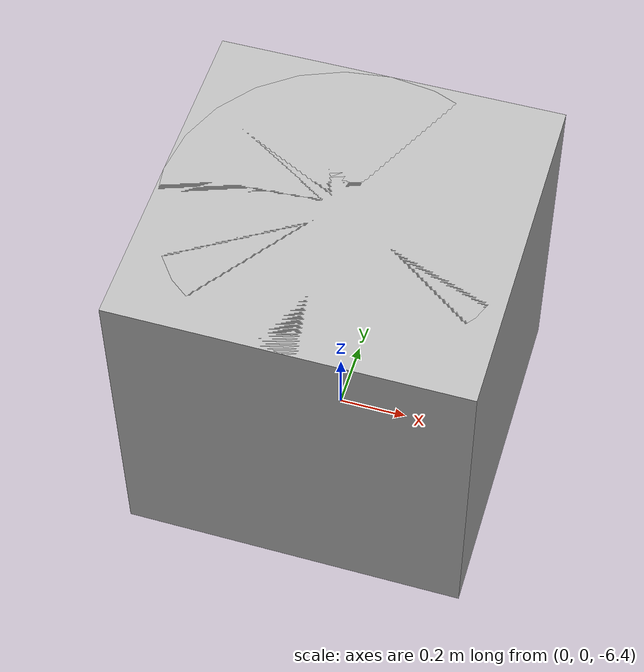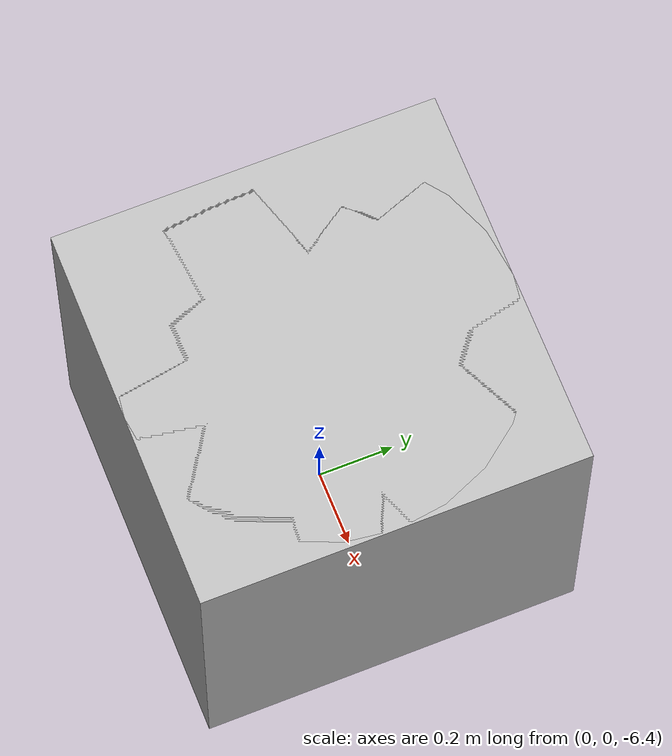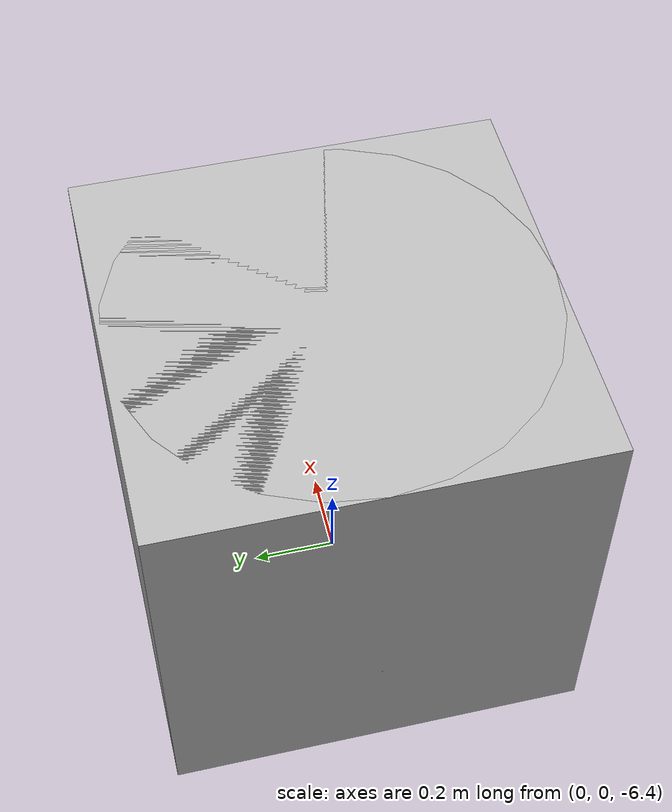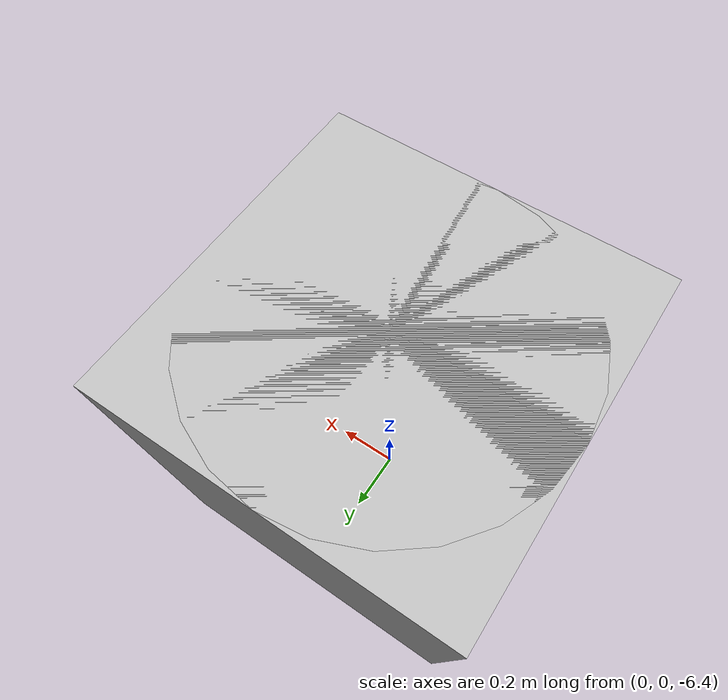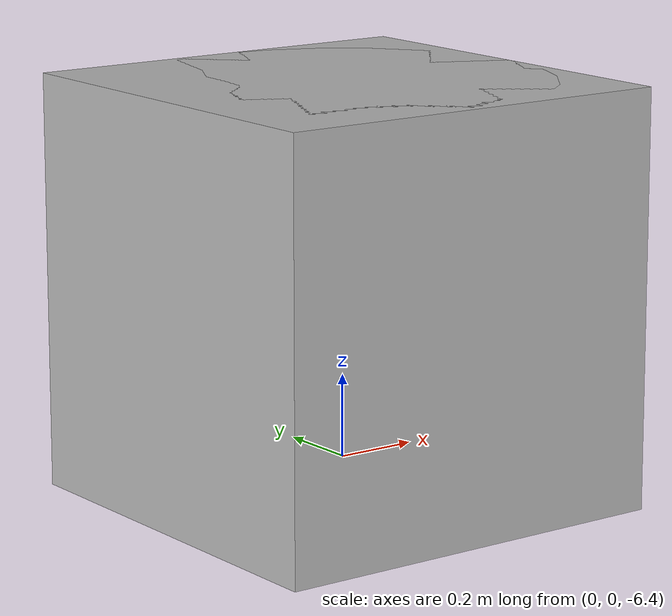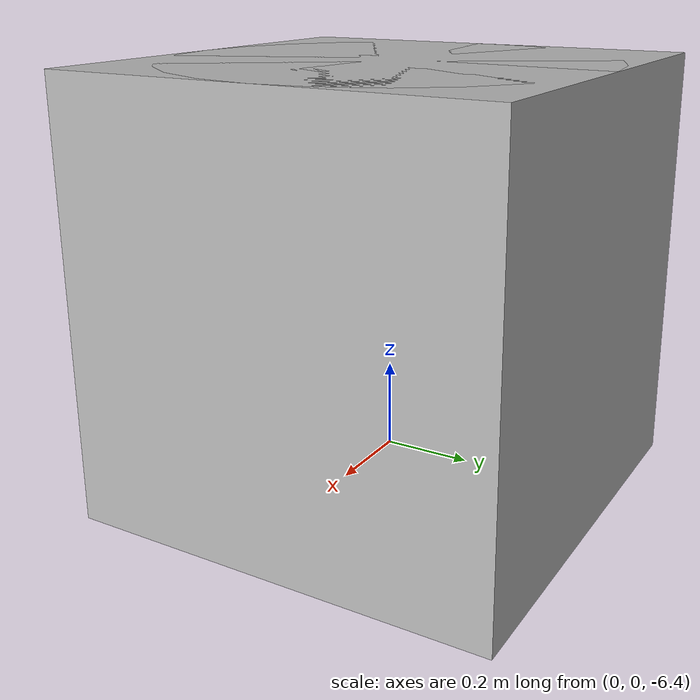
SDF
<?xml version="1.0"?>
<sdf version="1.6">
<world name="default">

    <plugin name="object_spawner" filename="libWorldUtils.so"/>

    <model name="sphere_1">
        <pose>0 0 -3 0 0 0</pose>
        <link name="link">
          <collision name="collision">
            <geometry>
              <sphere>
                <radius>0.5</radius>
              </sphere>
            </geometry>
          </collision>
          <visual name="visual">
            <pose>0 0 -3 0 0 0</pose>
            <geometry>
              <sphere>
                <radius>0.5</radius>
              </sphere>
            </geometry>
            <plugin name="visual_utils" filename="libVisualUtils.so">
              <uid>sphere_1</uid>
              <patterns>
                Plugin/flat_
                Plugin/gradient_
                Plugin/chess_
                Plugin/perlin_
              </patterns>
              <variants>100</variants>
            </plugin>
          </visual>
        </link>
    </model>
    <model name="sphere_2">
        <pose>0 0 -3 0 0 0</pose>
        <link name="link">
          <collision name="collision">
            <geometry>
              <sphere>
                <radius>0.5</radius>
              </sphere>
            </geometry>
          </collision>
          <visual name="visual">
            <pose>0 0 -3 0 0 0</pose>
            <geometry>
              <sphere>
                <radius>0.5</radius>
              </sphere>
            </geometry>
            <plugin name="visual_utils" filename="libVisualUtils.so">
              <uid>sphere_2</uid>
              <patterns>
                Plugin/flat_
                Plugin/gradient_
                Plugin/chess_
                Plugin/perlin_
              </patterns>
              <variants>100</variants>
            </plugin>
          </visual>
        </link>
    </model>
    <model name="sphere_3">
        <pose>0 0 -3 0 0 0</pose>
        <link name="link">
          <collision name="collision">
            <geometry>
              <sphere>
                <radius>0.5</radius>
              </sphere>
            </geometry>
          </collision>
          <visual name="visual">
            <pose>0 0 -3 0 0 0</pose>
            <geometry>
              <sphere>
                <radius>0.5</radius>
              </sphere>
            </geometry>
            <plugin name="visual_utils" filename="libVisualUtils.so">
              <uid>sphere_3</uid>
              <patterns>
                Plugin/flat_
                Plugin/gradient_
                Plugin/chess_
                Plugin/perlin_
              </patterns>
              <variants>100</variants>
            </plugin>
          </visual>
        </link>
    </model>
    <model name="sphere_4">
        <pose>0 0 -3 0 0 0</pose>
        <link name="link">
          <collision name="collision">
            <geometry>
              <sphere>
                <radius>0.5</radius>
              </sphere>
            </geometry>
          </collision>
          <visual name="visual">
            <pose>0 0 -3 0 0 0</pose>
            <geometry>
              <sphere>
                <radius>0.5</radius>
              </sphere>
            </geometry>
            <plugin name="visual_utils" filename="libVisualUtils.so">
              <uid>sphere_4</uid>
              <patterns>
                Plugin/flat_
                Plugin/gradient_
                Plugin/chess_
                Plugin/perlin_
              </patterns>
              <variants>100</variants>
            </plugin>
          </visual>
        </link>
    </model>
    <model name="sphere_5">
        <pose>0 0 -3 0 0 0</pose>
        <link name="link">
          <collision name="collision">
            <geometry>
              <sphere>
                <radius>0.5</radius>
              </sphere>
            </geometry>
          </collision>
          <visual name="visual">
            <pose>0 0 -3 0 0 0</pose>
            <geometry>
              <sphere>
                <radius>0.5</radius>
              </sphere>
            </geometry>
            <plugin name="visual_utils" filename="libVisualUtils.so">
              <uid>sphere_5</uid>
              <patterns>
                Plugin/flat_
                Plugin/gradient_
                Plugin/chess_
                Plugin/perlin_
              </patterns>
              <variants>100</variants>
            </plugin>
          </visual>
        </link>
    </model>
    <model name="sphere_6">
        <pose>0 0 -3 0 0 0</pose>
        <link name="link">
          <collision name="collision">
            <geometry>
              <sphere>
                <radius>0.5</radius>
              </sphere>
            </geometry>
          </collision>
          <visual name="visual">
            <pose>0 0 -3 0 0 0</pose>
            <geometry>
              <sphere>
                <radius>0.5</radius>
              </sphere>
            </geometry>
            <plugin name="visual_utils" filename="libVisualUtils.so">
              <uid>sphere_6</uid>
              <patterns>
                Plugin/flat_
                Plugin/gradient_
                Plugin/chess_
                Plugin/perlin_
              </patterns>
              <variants>100</variants>
            </plugin>
          </visual>
        </link>
    </model>
    <model name="sphere_7">
        <pose>0 0 -3 0 0 0</pose>
        <link name="link">
          <collision name="collision">
            <geometry>
              <sphere>
                <radius>0.5</radius>
              </sphere>
            </geometry>
          </collision>
          <visual name="visual">
            <pose>0 0 -3 0 0 0</pose>
            <geometry>
              <sphere>
                <radius>0.5</radius>
              </sphere>
            </geometry>
            <plugin name="visual_utils" filename="libVisualUtils.so">
              <uid>sphere_7</uid>
              <patterns>
                Plugin/flat_
                Plugin/gradient_
                Plugin/chess_
                Plugin/perlin_
              </patterns>
              <variants>100</variants>
            </plugin>
          </visual>
        </link>
    </model>
    <model name="sphere_8">
        <pose>0 0 -3 0 0 0</pose>
        <link name="link">
          <collision name="collision">
            <geometry>
              <sphere>
                <radius>0.5</radius>
              </sphere>
            </geometry>
          </collision>
          <visual name="visual">
            <pose>0 0 -3 0 0 0</pose>
            <geometry>
              <sphere>
                <radius>0.5</radius>
              </sphere>
            </geometry>
            <plugin name="visual_utils" filename="libVisualUtils.so">
              <uid>sphere_8</uid>
              <patterns>
                Plugin/flat_
                Plugin/gradient_
                Plugin/chess_
                Plugin/perlin_
              </patterns>
              <variants>100</variants>
            </plugin>
          </visual>
        </link>
    </model>
    <model name="sphere_9">
        <pose>0 0 -3 0 0 0</pose>
        <link name="link">
          <collision name="collision">
            <geometry>
              <sphere>
                <radius>0.5</radius>
              </sphere>
            </geometry>
          </collision>
          <visual name="visual">
            <pose>0 0 -3 0 0 0</pose>
            <geometry>
              <sphere>
                <radius>0.5</radius>
              </sphere>
            </geometry>
            <plugin name="visual_utils" filename="libVisualUtils.so">
              <uid>sphere_9</uid>
              <patterns>
                Plugin/flat_
                Plugin/gradient_
                Plugin/chess_
                Plugin/perlin_
              </patterns>
              <variants>100</variants>
            </plugin>
          </visual>
        </link>
    </model>
    <model name="sphere_10">
        <pose>0 0 -3 0 0 0</pose>
        <link name="link">
          <collision name="collision">
            <geometry>
              <sphere>
                <radius>0.5</radius>
              </sphere>
            </geometry>
          </collision>
          <visual name="visual">
            <pose>0 0 -3 0 0 0</pose>
            <geometry>
              <sphere>
                <radius>0.5</radius>
              </sphere>
            </geometry>
            <plugin name="visual_utils" filename="libVisualUtils.so">
              <uid>sphere_10</uid>
              <patterns>
                Plugin/flat_
                Plugin/gradient_
                Plugin/chess_
                Plugin/perlin_
              </patterns>
              <variants>100</variants>
            </plugin>
          </visual>
        </link>
    </model>

    <model name="box_1">
        <pose>0 0 -3 0 0 0</pose>
        <link name="link">
          <collision name="collision">
            <geometry>
              <box>
                <size>1 1 1</size>
              </box>
            </geometry>
          </collision>
          <visual name="visual">
            <pose>0 0 -3 0 0 0</pose>
            <geometry>
              <box>
                <size>1 1 1</size>
              </box>
            </geometry>
            <plugin name="visual_utils" filename="libVisualUtils.so">
              <uid>box_1</uid>
              <patterns>
                Plugin/flat_
                Plugin/gradient_
                Plugin/chess_
                Plugin/perlin_
              </patterns>
              <variants>100</variants>
            </plugin>
          </visual>
        </link>
    </model>
    <model name="box_2">
        <pose>0 0 -3 0 0 0</pose>
        <link name="link">
          <collision name="collision">
            <geometry>
              <box>
                <size>1 1 1</size>
              </box>
            </geometry>
          </collision>
          <visual name="visual">
            <pose>0 0 -3 0 0 0</pose>
            <geometry>
              <box>
                <size>1 1 1</size>
              </box>
            </geometry>
            <plugin name="visual_utils" filename="libVisualUtils.so">
              <uid>box_2</uid>
              <patterns>
                Plugin/flat_
                Plugin/gradient_
                Plugin/chess_
                Plugin/perlin_
              </patterns>
              <variants>100</variants>
            </plugin>
          </visual>
        </link>
    </model>
    <model name="box_3">
        <pose>0 0 -3 0 0 0</pose>
        <link name="link">
          <collision name="collision">
            <geometry>
              <box>
                <size>1 1 1</size>
              </box>
            </geometry>
          </collision>
          <visual name="visual">
            <pose>0 0 -3 0 0 0</pose>
            <geometry>
              <box>
                <size>1 1 1</size>
              </box>
            </geometry>
            <plugin name="visual_utils" filename="libVisualUtils.so">
              <uid>box_3</uid>
              <patterns>
                Plugin/flat_
                Plugin/gradient_
                Plugin/chess_
                Plugin/perlin_
              </patterns>
              <variants>100</variants>
            </plugin>
          </visual>
        </link>
    </model>
    <model name="box_4">
        <pose>0 0 -3 0 0 0</pose>
        <link name="link">
          <collision name="collision">
            <geometry>
              <box>
                <size>1 1 1</size>
              </box>
            </geometry>
          </collision>
          <visual name="visual">
            <pose>0 0 -3 0 0 0</pose>
            <geometry>
              <box>
                <size>1 1 1</size>
              </box>
            </geometry>
            <plugin name="visual_utils" filename="libVisualUtils.so">
              <uid>box_4</uid>
              <patterns>
                Plugin/flat_
                Plugin/gradient_
                Plugin/chess_
                Plugin/perlin_
              </patterns>
              <variants>100</variants>
            </plugin>
          </visual>
        </link>
    </model>
    <model name="box_5">
        <pose>0 0 -3 0 0 0</pose>
        <link name="link">
          <collision name="collision">
            <geometry>
              <box>
                <size>1 1 1</size>
              </box>
            </geometry>
          </collision>
          <visual name="visual">
            <pose>0 0 -3 0 0 0</pose>
            <geometry>
              <box>
                <size>1 1 1</size>
              </box>
            </geometry>
            <plugin name="visual_utils" filename="libVisualUtils.so">
              <uid>box_5</uid>
              <patterns>
                Plugin/flat_
                Plugin/gradient_
                Plugin/chess_
                Plugin/perlin_
              </patterns>
              <variants>100</variants>
            </plugin>
          </visual>
        </link>
    </model>
    <model name="box_6">
        <pose>0 0 -3 0 0 0</pose>
        <link name="link">
          <collision name="collision">
            <geometry>
              <box>
                <size>1 1 1</size>
              </box>
            </geometry>
          </collision>
          <visual name="visual">
            <pose>0 0 -3 0 0 0</pose>
            <geometry>
              <box>
                <size>1 1 1</size>
              </box>
            </geometry>
            <plugin name="visual_utils" filename="libVisualUtils.so">
              <uid>box_6</uid>
              <patterns>
                Plugin/flat_
                Plugin/gradient_
                Plugin/chess_
                Plugin/perlin_
              </patterns>
              <variants>100</variants>
            </plugin>
          </visual>
        </link>
    </model>
    <model name="box_7">
        <pose>0 0 -3 0 0 0</pose>
        <link name="link">
          <collision name="collision">
            <geometry>
              <box>
                <size>1 1 1</size>
              </box>
            </geometry>
          </collision>
          <visual name="visual">
            <pose>0 0 -3 0 0 0</pose>
            <geometry>
              <box>
                <size>1 1 1</size>
              </box>
            </geometry>
            <plugin name="visual_utils" filename="libVisualUtils.so">
              <uid>box_7</uid>
              <patterns>
                Plugin/flat_
                Plugin/gradient_
                Plugin/chess_
                Plugin/perlin_
              </patterns>
              <variants>100</variants>
            </plugin>
          </visual>
        </link>
    </model>
    <model name="box_8">
        <pose>0 0 -3 0 0 0</pose>
        <link name="link">
          <collision name="collision">
            <geometry>
              <box>
                <size>1 1 1</size>
              </box>
            </geometry>
          </collision>
          <visual name="visual">
            <pose>0 0 -3 0 0 0</pose>
            <geometry>
              <box>
                <size>1 1 1</size>
              </box>
            </geometry>
            <plugin name="visual_utils" filename="libVisualUtils.so">
              <uid>box_8</uid>
              <patterns>
                Plugin/flat_
                Plugin/gradient_
                Plugin/chess_
                Plugin/perlin_
              </patterns>
              <variants>100</variants>
            </plugin>
          </visual>
        </link>
    </model>
    <model name="box_9">
        <pose>0 0 -3 0 0 0</pose>
        <link name="link">
          <collision name="collision">
            <geometry>
              <box>
                <size>1 1 1</size>
              </box>
            </geometry>
          </collision>
          <visual name="visual">
            <pose>0 0 -3 0 0 0</pose>
            <geometry>
              <box>
                <size>1 1 1</size>
              </box>
            </geometry>
            <plugin name="visual_utils" filename="libVisualUtils.so">
              <uid>box_9</uid>
              <patterns>
                Plugin/flat_
                Plugin/gradient_
                Plugin/chess_
                Plugin/perlin_
              </patterns>
              <variants>100</variants>
            </plugin>
          </visual>
        </link>
    </model>
    <model name="box_10">
        <pose>0 0 -3 0 0 0</pose>
        <link name="link">
          <collision name="collision">
            <geometry>
              <box>
                <size>1 1 1</size>
              </box>
            </geometry>
          </collision>
          <visual name="visual">
            <pose>0 0 -3 0 0 0</pose>
            <geometry>
              <box>
                <size>1 1 1</size>
              </box>
            </geometry>
            <plugin name="visual_utils" filename="libVisualUtils.so">
              <uid>box_10</uid>
              <patterns>
                Plugin/flat_
                Plugin/gradient_
                Plugin/chess_
                Plugin/perlin_
              </patterns>
              <variants>100</variants>
            </plugin>
          </visual>
        </link>
    </model>

    <model name="cylinder_1">
        <pose>0 0 -3 0 0 0</pose>
        <link name="link">
          <collision name="collision">
            <geometry>
              <cylinder>
                <radius>0.5</radius>
                <length>1</length>
              </cylinder>
            </geometry>
          </collision>
          <visual name="visual">
            <pose>0 0 -3 0 0 0</pose>
            <geometry>
              <cylinder>
                <radius>0.5</radius>
                <length>1</length>
              </cylinder>
            </geometry>
            <plugin name="visual_utils" filename="libVisualUtils.so">
              <uid>cylinder_1</uid>
              <patterns>
                Plugin/flat_
                Plugin/gradient_
                Plugin/chess_
                Plugin/perlin_
              </patterns>
              <variants>100</variants>
            </plugin>
          </visual>
        </link>
    </model>
    <model name="cylinder_2">
        <pose>0 0 -3 0 0 0</pose>
        <link name="link">
          <collision name="collision">
            <geometry>
              <cylinder>
                <radius>0.5</radius>
                <length>1</length>
              </cylinder>
            </geometry>
          </collision>
          <visual name="visual">
            <pose>0 0 -3 0 0 0</pose>
            <geometry>
              <cylinder>
                <radius>0.5</radius>
                <length>1</length>
              </cylinder>
            </geometry>
            <plugin name="visual_utils" filename="libVisualUtils.so">
              <uid>cylinder_2</uid>
              <patterns>
                Plugin/flat_
                Plugin/gradient_
                Plugin/chess_
                Plugin/perlin_
              </patterns>
              <variants>100</variants>
            </plugin>
          </visual>
        </link>
    </model>
    <model name="cylinder_3">
        <pose>0 0 -3 0 0 0</pose>
        <link name="link">
          <collision name="collision">
            <geometry>
              <cylinder>
                <radius>0.5</radius>
                <length>1</length>
              </cylinder>
            </geometry>
          </collision>
          <visual name="visual">
            <pose>0 0 -3 0 0 0</pose>
            <geometry>
              <cylinder>
                <radius>0.5</radius>
                <length>1</length>
              </cylinder>
            </geometry>
            <plugin name="visual_utils" filename="libVisualUtils.so">
              <uid>cylinder_3</uid>
              <patterns>
                Plugin/flat_
                Plugin/gradient_
                Plugin/chess_
                Plugin/perlin_
              </patterns>
              <variants>100</variants>
            </plugin>
          </visual>
        </link>
    </model>
    <model name="cylinder_4">
        <pose>0 0 -3 0 0 0</pose>
        <link name="link">
          <collision name="collision">
            <geometry>
              <cylinder>
                <radius>0.5</radius>
                <length>1</length>
              </cylinder>
            </geometry>
          </collision>
          <visual name="visual">
            <pose>0 0 -3 0 0 0</pose>
            <geometry>
              <cylinder>
                <radius>0.5</radius>
                <length>1</length>
              </cylinder>
            </geometry>
            <plugin name="visual_utils" filename="libVisualUtils.so">
              <uid>cylinder_4</uid>
              <patterns>
                Plugin/flat_
                Plugin/gradient_
                Plugin/chess_
                Plugin/perlin_
              </patterns>
              <variants>100</variants>
            </plugin>
          </visual>
        </link>
    </model>
    <model name="cylinder_5">
        <pose>0 0 -3 0 0 0</pose>
        <link name="link">
          <collision name="collision">
            <geometry>
              <cylinder>
                <radius>0.5</radius>
                <length>1</length>
              </cylinder>
            </geometry>
          </collision>
          <visual name="visual">
            <pose>0 0 -3 0 0 0</pose>
            <geometry>
              <cylinder>
                <radius>0.5</radius>
                <length>1</length>
              </cylinder>
            </geometry>
            <plugin name="visual_utils" filename="libVisualUtils.so">
              <uid>cylinder_5</uid>
              <patterns>
                Plugin/flat_
                Plugin/gradient_
                Plugin/chess_
                Plugin/perlin_
              </patterns>
              <variants>100</variants>
            </plugin>
          </visual>
        </link>
    </model>
    <model name="cylinder_6">
        <pose>0 0 -3 0 0 0</pose>
        <link name="link">
          <collision name="collision">
            <geometry>
              <cylinder>
                <radius>0.5</radius>
                <length>1</length>
              </cylinder>
            </geometry>
          </collision>
          <visual name="visual">
            <pose>0 0 -3 0 0 0</pose>
            <geometry>
              <cylinder>
                <radius>0.5</radius>
                <length>1</length>
              </cylinder>
            </geometry>
            <plugin name="visual_utils" filename="libVisualUtils.so">
              <uid>cylinder_6</uid>
              <patterns>
                Plugin/flat_
                Plugin/gradient_
                Plugin/chess_
                Plugin/perlin_
              </patterns>
              <variants>100</variants>
            </plugin>
          </visual>
        </link>
    </model>
    <model name="cylinder_7">
        <pose>0 0 -3 0 0 0</pose>
        <link name="link">
          <collision name="collision">
            <geometry>
              <cylinder>
                <radius>0.5</radius>
                <length>1</length>
              </cylinder>
            </geometry>
          </collision>
          <visual name="visual">
            <pose>0 0 -3 0 0 0</pose>
            <geometry>
              <cylinder>
                <radius>0.5</radius>
                <length>1</length>
              </cylinder>
            </geometry>
            <plugin name="visual_utils" filename="libVisualUtils.so">
              <uid>cylinder_7</uid>
              <patterns>
                Plugin/flat_
                Plugin/gradient_
                Plugin/chess_
                Plugin/perlin_
              </patterns>
              <variants>100</variants>
            </plugin>
          </visual>
        </link>
    </model>
    <model name="cylinder_8">
        <pose>0 0 -3 0 0 0</pose>
        <link name="link">
          <collision name="collision">
            <geometry>
              <cylinder>
                <radius>0.5</radius>
                <length>1</length>
              </cylinder>
            </geometry>
          </collision>
          <visual name="visual">
            <pose>0 0 -3 0 0 0</pose>
            <geometry>
              <cylinder>
                <radius>0.5</radius>
                <length>1</length>
              </cylinder>
            </geometry>
            <plugin name="visual_utils" filename="libVisualUtils.so">
              <uid>cylinder_8</uid>
              <patterns>
                Plugin/flat_
                Plugin/gradient_
                Plugin/chess_
                Plugin/perlin_
              </patterns>
              <variants>100</variants>
            </plugin>
          </visual>
        </link>
    </model>
    <model name="cylinder_9">
        <pose>0 0 -3 0 0 0</pose>
        <link name="link">
          <collision name="collision">
            <geometry>
              <cylinder>
                <radius>0.5</radius>
                <length>1</length>
              </cylinder>
            </geometry>
          </collision>
          <visual name="visual">
            <pose>0 0 -3 0 0 0</pose>
            <geometry>
              <cylinder>
                <radius>0.5</radius>
                <length>1</length>
              </cylinder>
            </geometry>
            <plugin name="visual_utils" filename="libVisualUtils.so">
              <uid>cylinder_9</uid>
              <patterns>
                Plugin/flat_
                Plugin/gradient_
                Plugin/chess_
                Plugin/perlin_
              </patterns>
              <variants>100</variants>
            </plugin>
          </visual>
        </link>
    </model>
    <model name="cylinder_10">
        <pose>0 0 -3 0 0 0</pose>
        <link name="link">
          <collision name="collision">
            <geometry>
              <cylinder>
                <radius>0.5</radius>
                <length>1</length>
              </cylinder>
            </geometry>
          </collision>
          <visual name="visual">
            <pose>0 0 -3 0 0 0</pose>
            <geometry>
              <cylinder>
                <radius>0.5</radius>
                <length>1</length>
              </cylinder>
            </geometry>
            <plugin name="visual_utils" filename="libVisualUtils.so">
              <uid>cylinder_10</uid>
              <patterns>
                Plugin/flat_
                Plugin/gradient_
                Plugin/chess_
                Plugin/perlin_
              </patterns>
              <variants>100</variants>
            </plugin>
          </visual>
        </link>
    </model>

  </world>
</sdf>
